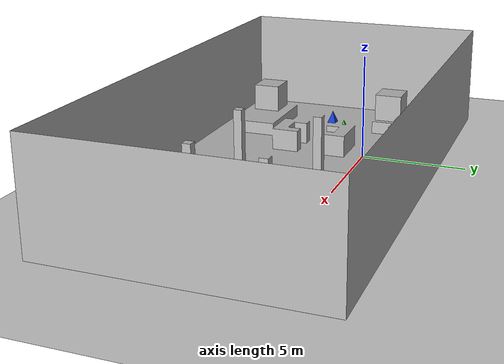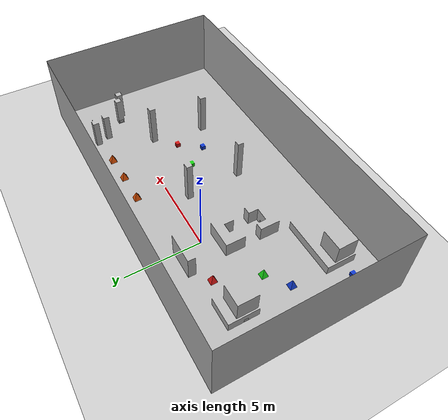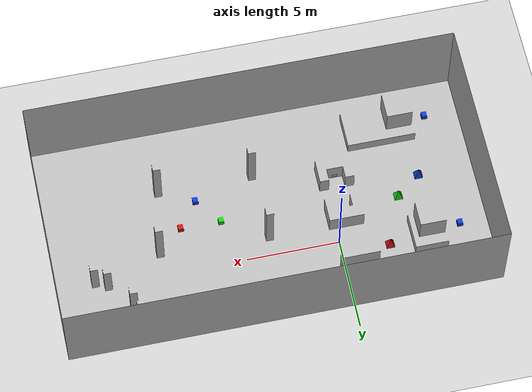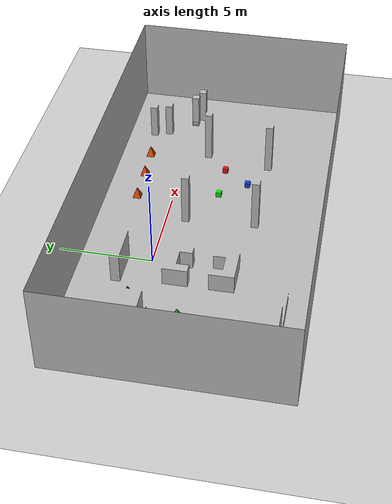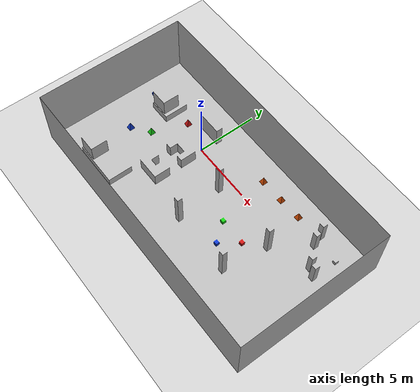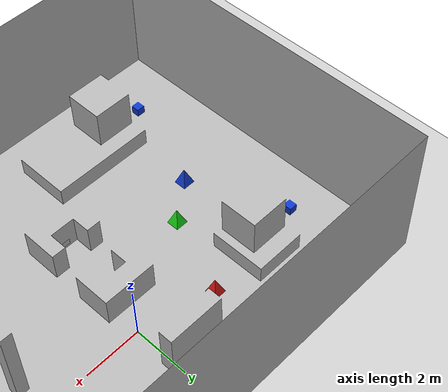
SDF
<?xml version="1.0"?>

<sdf version="1.6">
  <world name="pizza_world">
    <physics name="1ms" type="ignored">
      <max_step_size>0.004</max_step_size>
      <real_time_factor>1.0</real_time_factor>
      <real_time_update_rate>250</real_time_update_rate>
    </physics>

    <light type="directional" name="sun">
      <cast_shadows>true</cast_shadows>
      <pose>0 0 10 0 0 0</pose>
      <diffuse>0.8 0.8 0.8 1</diffuse>
      <specular>0.2 0.2 0.2 1</specular>
      <attenuation>
        <range>1000</range>
        <constant>0.9</constant>
        <linear>0.01</linear>
        <quadratic>0.001</quadratic>
      </attenuation>
      <direction>-0.5 0.1 -0.9</direction>
    </light>

    <model name="ground_plane">
      <static>true</static>
      <link name="link">
        <collision name="collision">
          <geometry>
            <plane>
              <normal>0 0 1</normal>
              <size>1 1</size>
            </plane>
          </geometry>
        </collision>
        <visual name="visual">
          <geometry>
            <plane>
              <normal>0 0 1</normal>
              <size>1 1</size>
            </plane>
          </geometry>
          <material>
            <ambient>0.8 0.8 0.8 1</ambient>
            <diffuse>0.8 0.8 0.8 1</diffuse>
            <specular>0.8 0.8 0.8 1</specular>
          </material>
        </visual>
      </link>
    </model>

    <model name="Italy">
      <static>true</static>
      <link name="link">
        <pose>6.27668 -1.2161 0.0001 0 -0 0</pose>
        <visual name="visual">
          <geometry>
            <mesh>
              <uri>italy_obj/Italy.dae</uri>
            </mesh>
          </geometry>
        </visual>
        <collision name="visual">
          <geometry>
            <mesh>
              <uri>italy_obj/Italy.dae</uri>
            </mesh>
          </geometry>
        </collision>
      </link>
      <plugin filename="ignition-gazebo-imu-system" name="gz::sim::systems::Imu">
      </plugin>
      <plugin filename="ignition-gazebo-sensors-system" name="gz::sim::systems::Sensors">
      </plugin>
    </model>

    <model name="wire">
      <static>true</static>
      <link name="link">
        <pose>6.27668 -1.2161 0.0001 0 -0 0</pose>
        <visual name="visual">
          <geometry>
            <mesh>
              <uri>italy_obj/wire.dae</uri>
            </mesh>
          </geometry>
        </visual>
        <collision name="visual">
          <geometry>
            <mesh>
              <uri>italy_obj/wire.dae</uri>
            </mesh>
          </geometry>
        </collision>
      </link>
    </model>

    <model name="kod0">
      <static>true</static>
      <link name="link">
        <pose>12.28 0.07 0.2 0 -1.57 0</pose>
        <visual name="visual">
          <geometry>
            <mesh>
              <uri>italy_obj/kod1.dae</uri>
            </mesh>
          </geometry>
        </visual>
        <collision name="visual">
          <geometry>
            <mesh>
              <uri>italy_obj/kod1.dae</uri>
            </mesh>
          </geometry>
        </collision>
      </link>
    </model>

    <model name="kod1">
      <static>true</static>
      <link name="link">
        <pose>-0.6 -3.9 0.2 0 -1.57 -1.57 </pose>
        <visual name="visual">
          <geometry>
            <mesh>
              <uri>italy_obj/kod2.dae</uri>
            </mesh>
          </geometry>
        </visual>
        <collision name="visual">
          <geometry>
            <mesh>
              <uri>italy_obj/kod2.dae</uri>
            </mesh>
          </geometry>
        </collision>
      </link>
    </model>

    <model name="kod2">
      <static>true</static>
      <link name="link">
        <pose>-5.66 0.3 0.2 0 -1.57 0</pose>
        <visual name="visual">
          <geometry>
            <mesh>
              <uri>italy_obj/kod0.dae</uri>
            </mesh>
          </geometry>
        </visual>
        <collision name="visual">
          <geometry>
            <mesh>
              <uri>italy_obj/kod0.dae</uri>
            </mesh>
          </geometry>
        </collision>
      </link>
    </model>

    <spherical_coordinates>
      <surface_model>EARTH_WGS84</surface_model>
      <world_frame_orientation>ENU</world_frame_orientation>
      <latitude_deg>53.1978</latitude_deg>
      <longitude_deg>18.3732</longitude_deg>
      <elevation>0</elevation>
      <heading_deg>0</heading_deg>
    </spherical_coordinates>

  </world>
</sdf>
